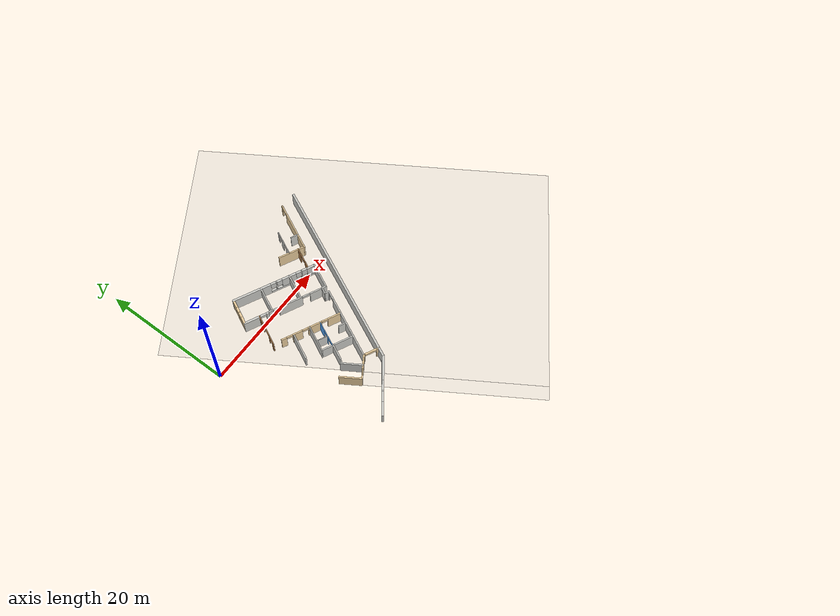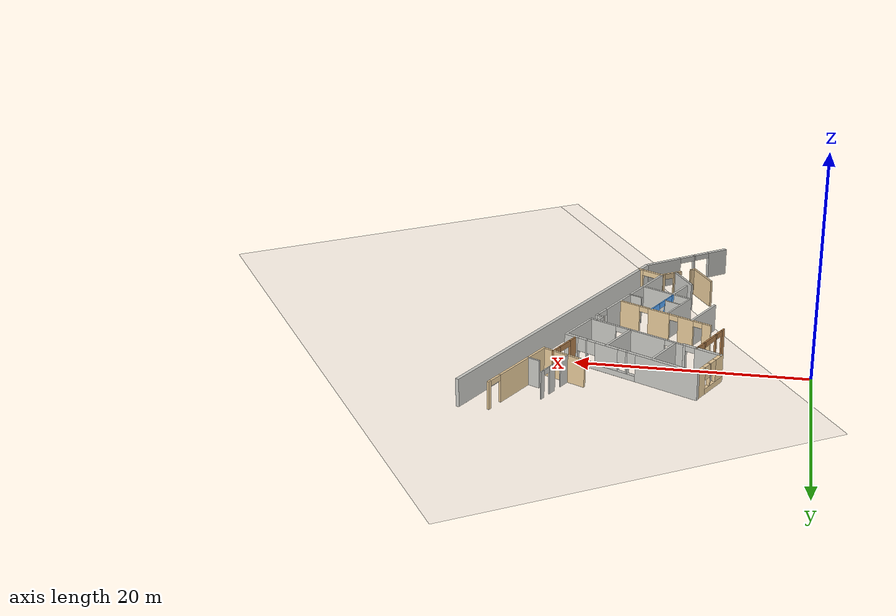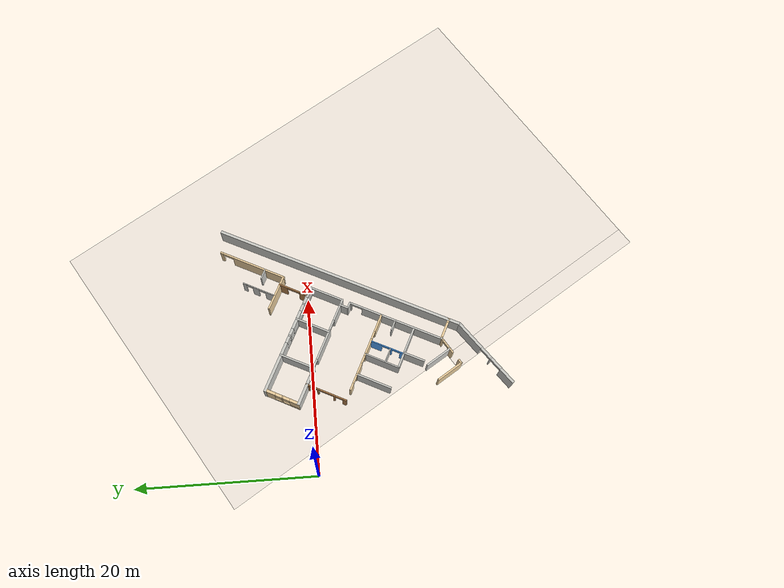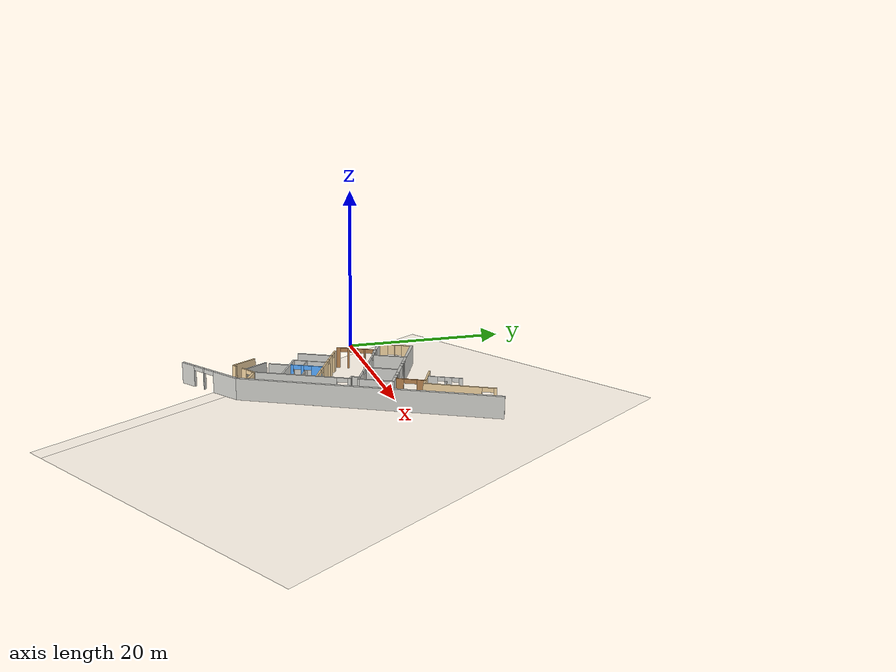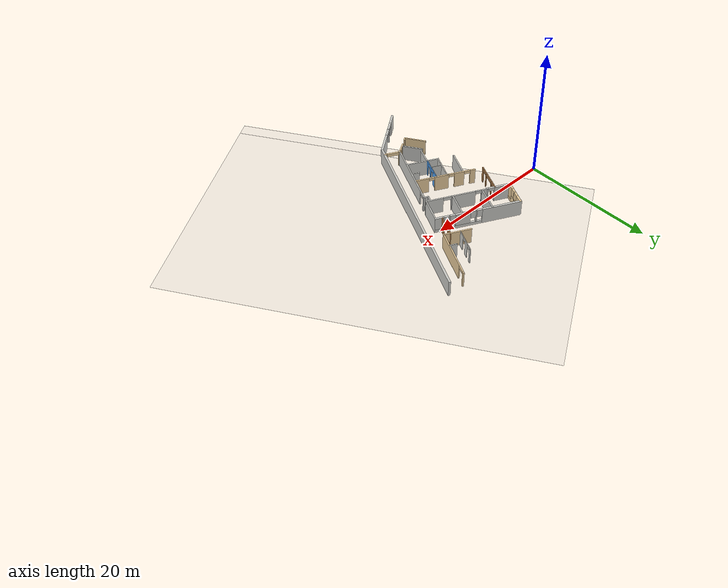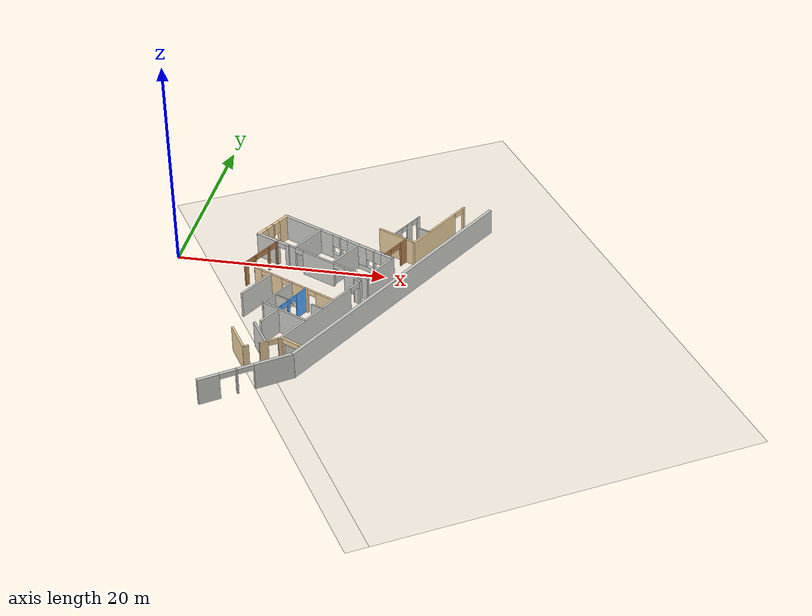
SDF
<sdf version="1.6">
 <model name="floor_with_ground">
  <pose>1.8499 0.23643 0 0 -0 0</pose>
  <link name="Wall_112">
   <pose>22.1541 5.91057 0 0 -0 1.10738</pose>
   <visual name="Wall_112_Visual_0">
    <pose>-0.807941 0 1.25 0 -0 0</pose>
    <geometry><box><size>6.40101 0.2 2.5</size></box></geometry>
    <material>
     <script><uri>file://media/materials/scripts/gazebo.material</uri><name>Gazebo/Grey</name></script>
     <ambient>0.921569 0.807843 0.615686 1</ambient>
    </material>
   </visual>
   <collision name="Wall_112_Collision_0">
    <geometry><box><size>6.40101 0.2 2.5</size></box></geometry>
    <pose>-0.807941 0 1.25 0 -0 0</pose>
   </collision>
   <visual name="Wall_112_Visual_1">
    <pose>3.83601 0 1.25 0 -0 0</pose>
    <geometry><box><size>0.344876 0.2 2.5</size></box></geometry>
    <material>
     <script><uri>file://media/materials/scripts/gazebo.material</uri><name>Gazebo/Grey</name></script>
     <ambient>0.921569 0.807843 0.615686 1</ambient>
    </material>
   </visual>
   <collision name="Wall_112_Collision_1">
    <geometry><box><size>0.344876 0.2 2.5</size></box></geometry>
    <pose>3.83601 0 1.25 0 -0 0</pose>
   </collision>
   <visual name="Wall_112_Visual_2">
    <pose>3.02807 0 2.25 0 -0 0</pose>
    <geometry><box><size>1.27101 0.2 0.5</size></box></geometry>
    <material>
     <script><uri>file://media/materials/scripts/gazebo.material</uri><name>Gazebo/Grey</name></script>
     <ambient>0.921569 0.807843 0.615686 1</ambient>
    </material>
   </visual>
   <collision name="Wall_112_Collision_2">
    <geometry><box><size>1.27101 0.2 0.5</size></box></geometry>
    <pose>3.02807 0 2.25 0 -0 0</pose>
   </collision>
  </link>
  <link name="Wall_12">
   <collision name="Wall_12_Collision">
    <geometry><box><size>4.1128 0.2 2.5</size></box></geometry>
    <pose>0 0 1.25 0 -0 0</pose>
   </collision>
   <visual name="Wall_12_Visual">
    <pose>0 0 1.25 0 -0 0</pose>
    <geometry><box><size>4.1128 0.2 2.5</size></box></geometry>
    <material>
     <script><uri>file://media/materials/scripts/gazebo.material</uri><name>Gazebo/CeilingTiled</name></script>
     <ambient>0.333333 0.666667 1 1</ambient>
    </material>
   </visual>
   <pose>14.4755 -0.590962 0 0 0 -2.03138</pose>
  </link>
  <link name="Wall_130">
   <collision name="Wall_130_Collision">
    <geometry><box><size>29.5051 0.32 2.5</size></box></geometry>
    <pose>0 0 1.25 0 -0 0</pose>
   </collision>
   <visual name="Wall_130_Visual">
    <pose>0 0 1.25 0 -0 0</pose>
    <geometry><box><size>29.5051 0.32 2.5</size></box></geometry>
    <material>
     <script><uri>file://media/materials/scripts/gazebo.material</uri><name>Gazebo/CeilingTiled</name></script>
     <ambient>0.921569 0.807843 0.615686 1</ambient>
    </material>
   </visual>
   <pose>19.9743 -3.85686 0 0 0 -2.02831</pose>
  </link>
  <link name="Wall_150">
   <pose>19.1341 5.27207 0 0 -0 1.10912</pose>
   <visual name="Wall_150_Visual_0">
    <pose>-1.39348 0 1.25 0 -0 0</pose>
    <geometry><box><size>1.16958 0.1 2.5</size></box></geometry>
    <material>
     <script><uri>file://media/materials/scripts/gazebo.material</uri><name>Gazebo/CeilingTiled</name></script>
     <ambient>0.333333 0.666667 1 1</ambient>
    </material>
   </visual>
   <collision name="Wall_150_Collision_0">
    <geometry><box><size>1.16958 0.1 2.5</size></box></geometry>
    <pose>-1.39348 0 1.25 0 -0 0</pose>
   </collision>
   <visual name="Wall_150_Visual_1">
    <pose>0.382725 0 1.25 0 -0 0</pose>
    <geometry><box><size>0.787005 0.1 2.5</size></box></geometry>
    <material>
     <script><uri>file://media/materials/scripts/gazebo.material</uri><name>Gazebo/CeilingTiled</name></script>
     <ambient>0.333333 0.666667 1 1</ambient>
    </material>
   </visual>
   <collision name="Wall_150_Collision_1">
    <geometry><box><size>0.787005 0.1 2.5</size></box></geometry>
    <pose>0.382725 0 1.25 0 -0 0</pose>
   </collision>
   <visual name="Wall_150_Visual_2">
    <pose>1.749 0 1.25 0 -0 0</pose>
    <geometry><box><size>0.458525 0.1 2.5</size></box></geometry>
    <material>
     <script><uri>file://media/materials/scripts/gazebo.material</uri><name>Gazebo/CeilingTiled</name></script>
     <ambient>0.333333 0.666667 1 1</ambient>
    </material>
   </visual>
   <collision name="Wall_150_Collision_2">
    <geometry><box><size>0.458525 0.1 2.5</size></box></geometry>
    <pose>1.749 0 1.25 0 -0 0</pose>
   </collision>
   <visual name="Wall_150_Visual_3">
    <pose>-0.409732 0 2.25 0 -0 0</pose>
    <geometry><box><size>0.79791 0.1 0.5</size></box></geometry>
    <material>
     <script><uri>file://media/materials/scripts/gazebo.material</uri><name>Gazebo/CeilingTiled</name></script>
     <ambient>0.333333 0.666667 1 1</ambient>
    </material>
   </visual>
   <collision name="Wall_150_Collision_3">
    <geometry><box><size>0.79791 0.1 0.5</size></box></geometry>
    <pose>-0.409732 0 2.25 0 -0 0</pose>
   </collision>
   <visual name="Wall_150_Visual_4">
    <pose>1.14798 0 2.25 0 -0 0</pose>
    <geometry><box><size>0.743511 0.1 0.5</size></box></geometry>
    <material>
     <script><uri>file://media/materials/scripts/gazebo.material</uri><name>Gazebo/CeilingTiled</name></script>
     <ambient>0.333333 0.666667 1 1</ambient>
    </material>
   </visual>
   <collision name="Wall_150_Collision_4">
    <geometry><box><size>0.743511 0.1 0.5</size></box></geometry>
    <pose>1.14798 0 2.25 0 -0 0</pose>
   </collision>
  </link>
  <link name="Wall_26">
   <collision name="Wall_26_Collision">
    <geometry><box><size>1.1044 0.2 2.5</size></box></geometry>
    <pose>0 0 1.25 0 -0 0</pose>
   </collision>
   <visual name="Wall_26_Visual">
    <pose>0 0 1.25 0 -0 0</pose>
    <geometry><box><size>1.1044 0.2 2.5</size></box></geometry>
    <material>
     <script><uri>file://media/materials/scripts/gazebo.material</uri><name>Gazebo/CeilingTiled</name></script>
     <ambient>0.921569 0.807843 0.615686 1</ambient>
    </material>
   </visual>
   <pose>16.4337 -4.25164 0 0 0 -2.02783</pose>
  </link>
  <link name="Wall_267">
   <collision name="Wall_267_Collision">
    <geometry><box><size>3.28805 0.2 2.5</size></box></geometry>
    <pose>0 0 1.25 0 -0 0</pose>
   </collision>
   <visual name="Wall_267_Visual">
    <pose>0 0 1.25 0 -0 0</pose>
    <geometry><box><size>3.28805 0.2 2.5</size></box></geometry>
    <material>
     <script><uri>file://media/materials/scripts/gazebo.material</uri><name>Gazebo/Grey</name></script>
     <ambient>0.921569 0.807843 0.615686 1</ambient>
    </material>
   </visual>
   <pose>8.1726 -15.4049 0 0 -0 2.12873432679</pose>
  </link>
  <link name="Wall_269">
   <collision name="Wall_269_Collision">
    <geometry><box><size>3.23877 0.2 2.5</size></box></geometry>
    <pose>0 0 1.25 0 -0 0</pose>
   </collision>
   <visual name="Wall_269_Visual">
    <pose>0 0 1.25 0 -0 0</pose>
    <geometry><box><size>3.23877 0.2 2.5</size></box></geometry>
    <material>
     <script><uri>file://media/materials/scripts/gazebo.material</uri><name>Gazebo/CeilingTiled</name></script>
     <ambient>0.921569 0.807843 0.615686 1</ambient>
    </material>
   </visual>
   <pose>9.86417 -14.3173 0 0 0 -1.0128583268</pose>
  </link>
  <link name="Wall_27">
   <collision name="Wall_27_Collision">
    <geometry><box><size>0.799416 0.2 2.5</size></box></geometry>
    <pose>0 0 1.25 0 -0 0</pose>
   </collision>
   <visual name="Wall_27_Visual">
    <pose>0 0 1.25 0 -0 0</pose>
    <geometry><box><size>0.799416 0.2 2.5</size></box></geometry>
    <material>
     <script><uri>file://media/materials/scripts/gazebo.material</uri><name>Gazebo/CeilingTiled</name></script>
     <ambient>0.921569 0.807843 0.615686 1</ambient>
    </material>
   </visual>
   <pose>16.4993 -4.79733 0 0 0 -0.485395</pose>
  </link>
  <link name="Wall_271">
   <pose>11.0941 -15.4007 0 0 -0 0.557938</pose>
   <visual name="Wall_271_Visual_0">
    <pose>-0.638415 0 1.25 0 -0 0</pose>
    <geometry><box><size>0.808393 0.2 2.5</size></box></geometry>
    <material>
     <script><uri>file://media/materials/scripts/gazebo.material</uri><name>Gazebo/Grey</name></script>
     <ambient>0.921569 0.807843 0.615686 1</ambient>
    </material>
   </visual>
   <collision name="Wall_271_Collision_0">
    <geometry><box><size>0.808393 0.2 2.5</size></box></geometry>
    <pose>-0.638415 0 1.25 0 -0 0</pose>
   </collision>
   <visual name="Wall_271_Visual_1">
    <pose>0.854197 0 1.25 0 -0 0</pose>
    <geometry><box><size>0.376831 0.2 2.5</size></box></geometry>
    <material>
     <script><uri>file://media/materials/scripts/gazebo.material</uri><name>Gazebo/Grey</name></script>
     <ambient>0.921569 0.807843 0.615686 1</ambient>
    </material>
   </visual>
   <collision name="Wall_271_Collision_1">
    <geometry><box><size>0.376831 0.2 2.5</size></box></geometry>
    <pose>0.854197 0 1.25 0 -0 0</pose>
   </collision>
   <visual name="Wall_271_Visual_2">
    <pose>0.215781 0 2.25 0 -0 0</pose>
    <geometry><box><size>0.9 0.2 0.5</size></box></geometry>
    <material>
     <script><uri>file://media/materials/scripts/gazebo.material</uri><name>Gazebo/Grey</name></script>
     <ambient>0.921569 0.807843 0.615686 1</ambient>
    </material>
   </visual>
   <collision name="Wall_271_Collision_2">
    <geometry><box><size>0.9 0.2 0.5</size></box></geometry>
    <pose>0.215781 0 2.25 0 -0 0</pose>
   </collision>
  </link>
  <link name="Wall_273">
   <collision name="Wall_273_Collision">
    <geometry><box><size>0.577636 0.2 2.5</size></box></geometry>
    <pose>0 0 1.25 0 -0 0</pose>
   </collision>
   <visual name="Wall_273_Visual">
    <pose>0 0 1.25 0 -0 0</pose>
    <geometry><box><size>0.577636 0.2 2.5</size></box></geometry>
    <material>
     <script><uri>file://media/materials/scripts/gazebo.material</uri><name>Gazebo/Grey</name></script>
     <ambient>0.921569 0.807843 0.615686 1</ambient>
    </material>
   </visual>
   <pose>9.1660 -16.6272 0 0 0 -2.58365465359</pose>
  </link>
  <link name="Wall_290">
   <collision name="Wall_290_Collision">
    <geometry><box><size>1.23874 0.15 2.5</size></box></geometry>
    <pose>0 0 1.25 0 -0 0</pose>
   </collision>
   <visual name="Wall_290_Visual">
    <pose>0 0 1.25 0 -0 0</pose>
    <geometry><box><size>1.23874 0.15 2.5</size></box></geometry>
    <material>
     <script><uri>file://media/materials/scripts/gazebo.material</uri><name>Gazebo/CeilingTiled</name></script>
     <ambient>0.333333 0.666667 1 1</ambient>
    </material>
   </visual>
   <pose>20.9669 4.70214 0 0 -0 2.70273</pose>
  </link>
  <link name="Wall_302">
   <collision name="Wall_302_Collision">
    <geometry><box><size>5.0033 0.2 2.5</size></box></geometry>
    <pose>0 0 1.25 0 -0 0</pose>
   </collision>
   <visual name="Wall_302_Visual">
    <pose>0 0 1.25 0 -0 0</pose>
    <geometry><box><size>5.0033 0.2 2.5</size></box></geometry>
    <material>
     <script><uri>file://media/materials/scripts/gazebo.material</uri><name>Gazebo/CeilingTiled</name></script>
     <ambient>0.921569 0.807843 0.615686 1</ambient>
    </material>
   </visual>
   <pose>11.2031 -10.8444 0 0 -0 2.68167</pose>
  </link>
  <link name="Wall_332">
   <pose>10.9816 -6.33693 0 0 0 -0.458374</pose>
   <visual name="Wall_332_Visual_0">
    <pose>-4.21903 0 1.25 0 -0 0</pose>
    <geometry><box><size>0.835689 0.2 2.5</size></box></geometry>
    <material>
     <script><uri>file://media/materials/scripts/gazebo.material</uri><name>Gazebo/Grey</name></script>
     <ambient>0.921569 0.807843 0.615686 1</ambient>
    </material>
   </visual>
   <collision name="Wall_332_Collision_0">
    <geometry><box><size>0.835689 0.2 2.5</size></box></geometry>
    <pose>-4.21903 0 1.25 0 -0 0</pose>
   </collision>
   <visual name="Wall_332_Visual_1">
    <pose>-2.14453 0 1.25 0 -0 0</pose>
    <geometry><box><size>1.51332 0.2 2.5</size></box></geometry>
    <material>
     <script><uri>file://media/materials/scripts/gazebo.material</uri><name>Gazebo/Grey</name></script>
     <ambient>0.921569 0.807843 0.615686 1</ambient>
    </material>
   </visual>
   <collision name="Wall_332_Collision_1">
    <geometry><box><size>1.51332 0.2 2.5</size></box></geometry>
    <pose>-2.14453 0 1.25 0 -0 0</pose>
   </collision>
   <visual name="Wall_332_Visual_2">
    <pose>0.57727 0 1.25 0 -0 0</pose>
    <geometry><box><size>2.13027 0.2 2.5</size></box></geometry>
    <material>
     <script><uri>file://media/materials/scripts/gazebo.material</uri><name>Gazebo/Grey</name></script>
     <ambient>0.921569 0.807843 0.615686 1</ambient>
    </material>
   </visual>
   <collision name="Wall_332_Collision_2">
    <geometry><box><size>2.13027 0.2 2.5</size></box></geometry>
    <pose>0.57727 0 1.25 0 -0 0</pose>
   </collision>
   <visual name="Wall_332_Visual_3">
    <pose>3.58964 0 1.25 0 -0 0</pose>
    <geometry><box><size>2.09447 0.2 2.5</size></box></geometry>
    <material>
     <script><uri>file://media/materials/scripts/gazebo.material</uri><name>Gazebo/Grey</name></script>
     <ambient>0.921569 0.807843 0.615686 1</ambient>
    </material>
   </visual>
   <collision name="Wall_332_Collision_3">
    <geometry><box><size>2.09447 0.2 2.5</size></box></geometry>
    <pose>3.58964 0 1.25 0 -0 0</pose>
   </collision>
   <visual name="Wall_332_Visual_4">
    <pose>-3.35119 0 2.25 0 -0 0</pose>
    <geometry><box><size>0.9 0.2 0.5</size></box></geometry>
    <material>
     <script><uri>file://media/materials/scripts/gazebo.material</uri><name>Gazebo/Grey</name></script>
     <ambient>0.921569 0.807843 0.615686 1</ambient>
    </material>
   </visual>
   <collision name="Wall_332_Collision_4">
    <geometry><box><size>0.9 0.2 0.5</size></box></geometry>
    <pose>-3.35119 0 2.25 0 -0 0</pose>
   </collision>
   <visual name="Wall_332_Visual_5">
    <pose>-0.937867 0 2.25 0 -0 0</pose>
    <geometry><box><size>0.9 0.2 0.5</size></box></geometry>
    <material>
     <script><uri>file://media/materials/scripts/gazebo.material</uri><name>Gazebo/Grey</name></script>
     <ambient>0.921569 0.807843 0.615686 1</ambient>
    </material>
   </visual>
   <collision name="Wall_332_Collision_5">
    <geometry><box><size>0.9 0.2 0.5</size></box></geometry>
    <pose>-0.937867 0 2.25 0 -0 0</pose>
   </collision>
   <visual name="Wall_332_Visual_6">
    <pose>2.09241 0 2.25 0 -0 0</pose>
    <geometry><box><size>0.9 0.2 0.5</size></box></geometry>
    <material>
     <script><uri>file://media/materials/scripts/gazebo.material</uri><name>Gazebo/Grey</name></script>
     <ambient>0.921569 0.807843 0.615686 1</ambient>
    </material>
   </visual>
   <collision name="Wall_332_Collision_6">
    <geometry><box><size>0.9 0.2 0.5</size></box></geometry>
    <pose>2.09241 0 2.25 0 -0 0</pose>
   </collision>
  </link>
  <link name="Wall_334">
   <pose>7.31311 0.655205 0 0 0 -0.453941</pose>
   <visual name="Wall_334_Visual_0">
    <pose>-0.64574 0 1.25 0 -0 0</pose>
    <geometry><box><size>2.55575 0.32 2.5</size></box></geometry>
    <material>
     <script><uri>file://media/materials/scripts/gazebo.material</uri><name>Gazebo/CeilingTiled</name></script>
     <ambient>0.921569 0.807843 0.615686 1</ambient>
    </material>
   </visual>
   <collision name="Wall_334_Collision_0">
    <geometry><box><size>2.55575 0.32 2.5</size></box></geometry>
    <pose>-0.64574 0 1.25 0 -0 0</pose>
   </collision>
   <visual name="Wall_334_Visual_1">
    <pose>1.72788 0 1.25 0 -0 0</pose>
    <geometry><box><size>0.39148 0.32 2.5</size></box></geometry>
    <material>
     <script><uri>file://media/materials/scripts/gazebo.material</uri><name>Gazebo/CeilingTiled</name></script>
     <ambient>0.921569 0.807843 0.615686 1</ambient>
    </material>
   </visual>
   <collision name="Wall_334_Collision_1">
    <geometry><box><size>0.39148 0.32 2.5</size></box></geometry>
    <pose>1.72788 0 1.25 0 -0 0</pose>
   </collision>
   <visual name="Wall_334_Visual_2">
    <pose>1.08214 0 2.25 0 -0 0</pose>
    <geometry><box><size>0.9 0.32 0.5</size></box></geometry>
    <material>
     <script><uri>file://media/materials/scripts/gazebo.material</uri><name>Gazebo/CeilingTiled</name></script>
     <ambient>0.921569 0.807843 0.615686 1</ambient>
    </material>
   </visual>
   <collision name="Wall_334_Collision_2">
    <geometry><box><size>0.9 0.32 0.5</size></box></geometry>
    <pose>1.08214 0 2.25 0 -0 0</pose>
   </collision>
  </link>
  <link name="Wall_336">
   <pose>13.0975 -2.1013 0 0 0 -0.455281</pose>
   <visual name="Wall_336_Visual_0">
    <pose>-4.21364 0 1.25 0 -0 0</pose>
    <geometry><box><size>0.897401 0.2 2.5</size></box></geometry>
    <material>
     <script><uri>file://media/materials/scripts/gazebo.material</uri><name>Gazebo/CeilingTiled</name></script>
     <ambient>0.921569 0.807843 0.615686 1</ambient>
    </material>
   </visual>
   <collision name="Wall_336_Collision_0">
    <geometry><box><size>0.897401 0.2 2.5</size></box></geometry>
    <pose>-4.21364 0 1.25 0 -0 0</pose>
   </collision>
   <visual name="Wall_336_Visual_1">
    <pose>-1.02963 0 1.25 0 -0 0</pose>
    <geometry><box><size>3.67063 0.2 2.5</size></box></geometry>
    <material>
     <script><uri>file://media/materials/scripts/gazebo.material</uri><name>Gazebo/CeilingTiled</name></script>
     <ambient>0.921569 0.807843 0.615686 1</ambient>
    </material>
   </visual>
   <collision name="Wall_336_Collision_1">
    <geometry><box><size>3.67063 0.2 2.5</size></box></geometry>
    <pose>-1.02963 0 1.25 0 -0 0</pose>
   </collision>
   <visual name="Wall_336_Visual_2">
    <pose>3.33821 0 1.25 0 -0 0</pose>
    <geometry><box><size>2.64825 0.2 2.5</size></box></geometry>
    <material>
     <script><uri>file://media/materials/scripts/gazebo.material</uri><name>Gazebo/CeilingTiled</name></script>
     <ambient>0.921569 0.807843 0.615686 1</ambient>
    </material>
   </visual>
   <collision name="Wall_336_Collision_2">
    <geometry><box><size>2.64825 0.2 2.5</size></box></geometry>
    <pose>3.33821 0 1.25 0 -0 0</pose>
   </collision>
   <visual name="Wall_336_Visual_3">
    <pose>-3.31494 0 2.25 0 -0 0</pose>
    <geometry><box><size>0.9 0.2 0.5</size></box></geometry>
    <material>
     <script><uri>file://media/materials/scripts/gazebo.material</uri><name>Gazebo/CeilingTiled</name></script>
     <ambient>0.921569 0.807843 0.615686 1</ambient>
    </material>
   </visual>
   <collision name="Wall_336_Collision_3">
    <geometry><box><size>0.9 0.2 0.5</size></box></geometry>
    <pose>-3.31494 0 2.25 0 -0 0</pose>
   </collision>
   <visual name="Wall_336_Visual_4">
    <pose>1.40989 0 2.25 0 -0 0</pose>
    <geometry><box><size>1.2084 0.2 0.5</size></box></geometry>
    <material>
     <script><uri>file://media/materials/scripts/gazebo.material</uri><name>Gazebo/CeilingTiled</name></script>
     <ambient>0.921569 0.807843 0.615686 1</ambient>
    </material>
   </visual>
   <collision name="Wall_336_Collision_4">
    <geometry><box><size>1.2084 0.2 0.5</size></box></geometry>
    <pose>1.40989 0 2.25 0 -0 0</pose>
   </collision>
  </link>
  <link name="Wall_341">
   <collision name="Wall_341_Collision">
    <geometry><box><size>4.17213 0.2 2.5</size></box></geometry>
    <pose>0 0 1.25 0 -0 0</pose>
   </collision>
   <visual name="Wall_341_Visual">
    <pose>0 0 1.25 0 -0 0</pose>
    <geometry><box><size>4.17213 0.2 2.5</size></box></geometry>
    <material>
     <script><uri>file://media/materials/scripts/gazebo.material</uri><name>Gazebo/Grey</name></script>
     <ambient>0.921569 0.807843 0.615686 1</ambient>
    </material>
   </visual>
   <pose>18.6106 3.31657 0 0 0 -0.460157</pose>
  </link>
  <link name="Wall_364">
   <collision name="Wall_364_Collision">
    <geometry><box><size>4.10297 0.2 2.5</size></box></geometry>
    <pose>0 0 1.25 0 -0 0</pose>
   </collision>
   <visual name="Wall_364_Visual">
    <pose>0 0 1.25 0 -0 0</pose>
    <geometry><box><size>4.10297 0.2 2.5</size></box></geometry>
    <material>
     <script><uri>file://media/materials/scripts/gazebo.material</uri><name>Gazebo/CeilingTiled</name></script>
     <ambient>0.921569 0.807843 0.615686 1</ambient>
    </material>
   </visual>
   <pose>18.0652 -2.35064 0 0 -0 1.10983</pose>
  </link>
  <link name="Wall_380">
   <collision name="Wall_380_Collision">
    <geometry><box><size>2.50657 0.2 2.5</size></box></geometry>
    <pose>0 0 1.25 0 -0 0</pose>
   </collision>
   <visual name="Wall_380_Visual">
    <pose>0 0 1.25 0 -0 0</pose>
    <geometry><box><size>2.50657 0.2 2.5</size></box></geometry>
    <material>
     <script><uri>file://media/materials/scripts/gazebo.material</uri><name>Gazebo/CeilingTiled</name></script>
     <ambient>0.921569 0.807843 0.615686 1</ambient>
    </material>
   </visual>
   <pose>10.0523 -11.6024 0 0 0 -2.02773</pose>
  </link>
  <link name="Wall_386">
   <pose>9.95143 -19.6035 0 0 -0 0.628193</pose>
   <visual name="Wall_386_Visual_0">
    <pose>-3.38858 0 1.25 0 -0 0</pose>
    <geometry><box><size>2.005 0.32 2.5</size></box></geometry>
    <material>
     <script><uri>file://media/materials/scripts/gazebo.material</uri><name>Gazebo/CeilingTiled</name></script>
     <ambient>0.921569 0.807843 0.615686 1</ambient>
    </material>
   </visual>
   <collision name="Wall_386_Collision_0">
    <geometry><box><size>2.005 0.32 2.5</size></box></geometry>
    <pose>-3.38858 0 1.25 0 -0 0</pose>
   </collision>
   <visual name="Wall_386_Visual_1">
    <pose>-0.816378 0 1.25 0 -0 0</pose>
    <geometry><box><size>0.139412 0.32 2.5</size></box></geometry>
    <material>
     <script><uri>file://media/materials/scripts/gazebo.material</uri><name>Gazebo/CeilingTiled</name></script>
     <ambient>0.921569 0.807843 0.615686 1</ambient>
    </material>
   </visual>
   <collision name="Wall_386_Collision_1">
    <geometry><box><size>0.139412 0.32 2.5</size></box></geometry>
    <pose>-0.816378 0 1.25 0 -0 0</pose>
   </collision>
   <visual name="Wall_386_Visual_2">
    <pose>2.57221 0 1.25 0 -0 0</pose>
    <geometry><box><size>3.63776 0.32 2.5</size></box></geometry>
    <material>
     <script><uri>file://media/materials/scripts/gazebo.material</uri><name>Gazebo/CeilingTiled</name></script>
     <ambient>0.921569 0.807843 0.615686 1</ambient>
    </material>
   </visual>
   <collision name="Wall_386_Collision_2">
    <geometry><box><size>3.63776 0.32 2.5</size></box></geometry>
    <pose>2.57221 0 1.25 0 -0 0</pose>
   </collision>
   <visual name="Wall_386_Visual_3">
    <pose>-1.63608 0 2.25 0 -0 0</pose>
    <geometry><box><size>1.5 0.32 0.5</size></box></geometry>
    <material>
     <script><uri>file://media/materials/scripts/gazebo.material</uri><name>Gazebo/CeilingTiled</name></script>
     <ambient>0.921569 0.807843 0.615686 1</ambient>
    </material>
   </visual>
   <collision name="Wall_386_Collision_3">
    <geometry><box><size>1.5 0.32 0.5</size></box></geometry>
    <pose>-1.63608 0 2.25 0 -0 0</pose>
   </collision>
   <visual name="Wall_386_Visual_4">
    <pose>0.003328 0 2.25 0 -0 0</pose>
    <geometry><box><size>1.5 0.32 0.5</size></box></geometry>
    <material>
     <script><uri>file://media/materials/scripts/gazebo.material</uri><name>Gazebo/CeilingTiled</name></script>
     <ambient>0.921569 0.807843 0.615686 1</ambient>
    </material>
   </visual>
   <collision name="Wall_386_Collision_4">
    <geometry><box><size>1.5 0.32 0.5</size></box></geometry>
    <pose>0.003328 0 2.25 0 -0 0</pose>
   </collision>
  </link>
  <link name="Wall_39">
   <collision name="Wall_39_Collision">
    <geometry><box><size>1.25022 0.15 2.5</size></box></geometry>
    <pose>0 0 1.25 0 -0 0</pose>
   </collision>
   <visual name="Wall_39_Visual">
    <pose>0 0 1.25 0 -0 0</pose>
    <geometry><box><size>1.25022 0.15 2.5</size></box></geometry>
    <material>
     <script><uri>file://media/materials/scripts/gazebo.material</uri><name>Gazebo/CeilingTiled</name></script>
     <ambient>0.333333 0.666667 1 1</ambient>
    </material>
   </visual>
   <pose>13.8575 -9.62776 0 0 -0 2.69407</pose>
  </link>
  <link name="Wall_44">
   <collision name="Wall_44_Collision">
    <geometry><box><size>4.15523 0.15 2.5</size></box></geometry>
    <pose>0 0 1.25 0 -0 0</pose>
   </collision>
   <visual name="Wall_44_Visual">
    <pose>0 0 1.25 0 -0 0</pose>
    <geometry><box><size>4.15523 0.15 2.5</size></box></geometry>
    <material>
     <script><uri>file://media/materials/scripts/gazebo.material</uri><name>Gazebo/CeilingTiled</name></script>
     <ambient>0.333333 0.666667 1 1</ambient>
    </material>
   </visual>
   <pose>9.87577 -8.00783 0 0 -0 1.10819</pose>
  </link>
  <link name="Wall_5">
   <pose>13.1629 2.18986 0 0 0 -0.459535</pose>
   <visual name="Wall_5_Visual_0">
    <pose>-3.53371 0 1.25 0 -0 0</pose>
    <geometry><box><size>5.94935 0.32 2.5</size></box></geometry>
    <material>
     <script><uri>file://media/materials/scripts/gazebo.material</uri><name>Gazebo/CeilingTiled</name></script>
     <ambient>0.921569 0.807843 0.615686 1</ambient>
    </material>
   </visual>
   <collision name="Wall_5_Collision_0">
    <geometry><box><size>5.94935 0.32 2.5</size></box></geometry>
    <pose>-3.53371 0 1.25 0 -0 0</pose>
   </collision>
   <visual name="Wall_5_Visual_1">
    <pose>2.97468 0 0.25 0 -0 0</pose>
    <geometry><box><size>7.06743 0.32 0.5</size></box></geometry>
    <material>
     <script><uri>file://media/materials/scripts/gazebo.material</uri><name>Gazebo/CeilingTiled</name></script>
     <ambient>0.921569 0.807843 0.615686 1</ambient>
    </material>
   </visual>
   <collision name="Wall_5_Collision_1">
    <geometry><box><size>7.06743 0.32 0.5</size></box></geometry>
    <pose>2.97468 0 0.25 0 -0 0</pose>
   </collision>
   <visual name="Wall_5_Visual_2">
    <pose>0.320411 0 1.5 0 -0 0</pose>
    <geometry><box><size>0.158894 0.32 2</size></box></geometry>
    <material>
     <script><uri>file://media/materials/scripts/gazebo.material</uri><name>Gazebo/CeilingTiled</name></script>
     <ambient>0.921569 0.807843 0.615686 1</ambient>
    </material>
   </visual>
   <collision name="Wall_5_Collision_2">
    <geometry><box><size>0.158894 0.32 2</size></box></geometry>
    <pose>0.320411 0 1.5 0 -0 0</pose>
   </collision>
   <visual name="Wall_5_Visual_3">
    <pose>2.32097 0 1.5 0 -0 0</pose>
    <geometry><box><size>2.24223 0.32 2</size></box></geometry>
    <material>
     <script><uri>file://media/materials/scripts/gazebo.material</uri><name>Gazebo/CeilingTiled</name></script>
     <ambient>0.921569 0.807843 0.615686 1</ambient>
    </material>
   </visual>
   <collision name="Wall_5_Collision_3">
    <geometry><box><size>2.24223 0.32 2</size></box></geometry>
    <pose>2.32097 0 1.5 0 -0 0</pose>
   </collision>
   <visual name="Wall_5_Visual_4">
    <pose>4.30792 0 1.5 0 -0 0</pose>
    <geometry><box><size>0.131654 0.32 2</size></box></geometry>
    <material>
     <script><uri>file://media/materials/scripts/gazebo.material</uri><name>Gazebo/CeilingTiled</name></script>
     <ambient>0.921569 0.807843 0.615686 1</ambient>
    </material>
   </visual>
   <collision name="Wall_5_Collision_4">
    <geometry><box><size>0.131654 0.32 2</size></box></geometry>
    <pose>4.30792 0 1.5 0 -0 0</pose>
   </collision>
   <visual name="Wall_5_Visual_5">
    <pose>5.84107 0 1.5 0 -0 0</pose>
    <geometry><box><size>1.33464 0.32 2</size></box></geometry>
    <material>
     <script><uri>file://media/materials/scripts/gazebo.material</uri><name>Gazebo/CeilingTiled</name></script>
     <ambient>0.921569 0.807843 0.615686 1</ambient>
    </material>
   </visual>
   <collision name="Wall_5_Collision_5">
    <geometry><box><size>1.33464 0.32 2</size></box></geometry>
    <pose>5.84107 0 1.5 0 -0 0</pose>
   </collision>
   <visual name="Wall_5_Visual_6">
    <pose>-0.159036 0 1.9 0 -0 0</pose>
    <geometry><box><size>0.8 0.32 1.2</size></box></geometry>
    <material>
     <script><uri>file://media/materials/scripts/gazebo.material</uri><name>Gazebo/CeilingTiled</name></script>
     <ambient>0.921569 0.807843 0.615686 1</ambient>
    </material>
   </visual>
   <collision name="Wall_5_Collision_6">
    <geometry><box><size>0.8 0.32 1.2</size></box></geometry>
    <pose>-0.159036 0 1.9 0 -0 0</pose>
   </collision>
   <visual name="Wall_5_Visual_7">
    <pose>0.799858 0 1.9 0 -0 0</pose>
    <geometry><box><size>0.8 0.32 1.2</size></box></geometry>
    <material>
     <script><uri>file://media/materials/scripts/gazebo.material</uri><name>Gazebo/CeilingTiled</name></script>
     <ambient>0.921569 0.807843 0.615686 1</ambient>
    </material>
   </visual>
   <collision name="Wall_5_Collision_7">
    <geometry><box><size>0.8 0.32 1.2</size></box></geometry>
    <pose>0.799858 0 1.9 0 -0 0</pose>
   </collision>
   <visual name="Wall_5_Visual_8">
    <pose>3.84209 0 1.9 0 -0 0</pose>
    <geometry><box><size>0.8 0.32 1.2</size></box></geometry>
    <material>
     <script><uri>file://media/materials/scripts/gazebo.material</uri><name>Gazebo/CeilingTiled</name></script>
     <ambient>0.921569 0.807843 0.615686 1</ambient>
    </material>
   </visual>
   <collision name="Wall_5_Collision_8">
    <geometry><box><size>0.8 0.32 1.2</size></box></geometry>
    <pose>3.84209 0 1.9 0 -0 0</pose>
   </collision>
   <visual name="Wall_5_Visual_9">
    <pose>4.77375 0 1.9 0 -0 0</pose>
    <geometry><box><size>0.8 0.32 1.2</size></box></geometry>
    <material>
     <script><uri>file://media/materials/scripts/gazebo.material</uri><name>Gazebo/CeilingTiled</name></script>
     <ambient>0.921569 0.807843 0.615686 1</ambient>
    </material>
   </visual>
   <collision name="Wall_5_Collision_9">
    <geometry><box><size>0.8 0.32 1.2</size></box></geometry>
    <pose>4.77375 0 1.9 0 -0 0</pose>
   </collision>
  </link>
  <link name="Wall_57">
   <collision name="Wall_57_Collision">
    <geometry><box><size>4.11412 0.2 2.5</size></box></geometry>
    <pose>0 0 1.25 0 -0 0</pose>
   </collision>
   <visual name="Wall_57_Visual">
    <pose>0 0 1.25 0 -0 0</pose>
    <geometry><box><size>4.11412 0.2 2.5</size></box></geometry>
    <material>
     <script><uri>file://media/materials/scripts/gazebo.material</uri><name>Gazebo/CeilingTiled</name></script>
     <ambient>0.333333 0.666667 1 1</ambient>
    </material>
   </visual>
   <pose>7.6526 -6.931 0 0 -0 1.10712</pose>
  </link>
  <link name="Wall_70">
   <pose>14.3578 -9.89619 0 0 0 -2.02975</pose>
   <visual name="Wall_70_Visual_0">
    <pose>-5.44816 0 1.25 0 -0 0</pose>
    <geometry><box><size>0.353116 0.2 2.5</size></box></geometry>
    <material>
     <script><uri>file://media/materials/scripts/gazebo.material</uri><name>Gazebo/CeilingTiled</name></script>
     <ambient>0.921569 0.807843 0.615686 1</ambient>
    </material>
   </visual>
   <collision name="Wall_70_Collision_0">
    <geometry><box><size>0.353116 0.2 2.5</size></box></geometry>
    <pose>-5.44816 0 1.25 0 -0 0</pose>
   </collision>
   <visual name="Wall_70_Visual_1">
    <pose>0.800409 0 1.25 0 -0 0</pose>
    <geometry><box><size>9.64861 0.2 2.5</size></box></geometry>
    <material>
     <script><uri>file://media/materials/scripts/gazebo.material</uri><name>Gazebo/CeilingTiled</name></script>
     <ambient>0.921569 0.807843 0.615686 1</ambient>
    </material>
   </visual>
   <collision name="Wall_70_Collision_1">
    <geometry><box><size>9.64861 0.2 2.5</size></box></geometry>
    <pose>0.800409 0 1.25 0 -0 0</pose>
   </collision>
   <visual name="Wall_70_Visual_2">
    <pose>-4.64775 0 2.25 0 -0 0</pose>
    <geometry><box><size>1.2477 0.2 0.5</size></box></geometry>
    <material>
     <script><uri>file://media/materials/scripts/gazebo.material</uri><name>Gazebo/CeilingTiled</name></script>
     <ambient>0.921569 0.807843 0.615686 1</ambient>
    </material>
   </visual>
   <collision name="Wall_70_Collision_2">
    <geometry><box><size>1.2477 0.2 0.5</size></box></geometry>
    <pose>-4.64775 0 2.25 0 -0 0</pose>
   </collision>
  </link>
  <link name="Wall_73">
   <pose>6.764 -1.6362 0 0 -0 1.11548</pose>
   <visual name="Wall_73_Visual_0">
    <pose>-2.19583 0 1.25 0 -0 0</pose>
    <geometry><box><size>0.451571 0.15 2.5</size></box></geometry>
    <material>
     <script><uri>file://media/materials/scripts/gazebo.material</uri><name>Gazebo/Wood</name></script>
     <ambient>1 1 1 1</ambient>
    </material>
   </visual>
   <collision name="Wall_73_Collision_0">
    <geometry><box><size>0.451571 0.15 2.5</size></box></geometry>
    <pose>-2.19583 0 1.25 0 -0 0</pose>
   </collision>
   <visual name="Wall_73_Visual_1">
    <pose>-0.9682 0 1.25 0 -0 0</pose>
    <geometry><box><size>0.203699 0.15 2.5</size></box></geometry>
    <material>
     <script><uri>file://media/materials/scripts/gazebo.material</uri><name>Gazebo/Wood</name></script>
     <ambient>1 1 1 1</ambient>
    </material>
   </visual>
   <collision name="Wall_73_Collision_1">
    <geometry><box><size>0.203699 0.15 2.5</size></box></geometry>
    <pose>-0.9682 0 1.25 0 -0 0</pose>
   </collision>
   <visual name="Wall_73_Visual_2">
    <pose>0.963619 0 1.25 0 -0 0</pose>
    <geometry><box><size>0.201384 0.15 2.5</size></box></geometry>
    <material>
     <script><uri>file://media/materials/scripts/gazebo.material</uri><name>Gazebo/Wood</name></script>
     <ambient>1 1 1 1</ambient>
    </material>
   </visual>
   <collision name="Wall_73_Collision_2">
    <geometry><box><size>0.201384 0.15 2.5</size></box></geometry>
    <pose>0.963619 0 1.25 0 -0 0</pose>
   </collision>
   <visual name="Wall_73_Visual_3">
    <pose>2.19297 0 1.25 0 -0 0</pose>
    <geometry><box><size>0.457309 0.15 2.5</size></box></geometry>
    <material>
     <script><uri>file://media/materials/scripts/gazebo.material</uri><name>Gazebo/Wood</name></script>
     <ambient>1 1 1 1</ambient>
    </material>
   </visual>
   <collision name="Wall_73_Collision_3">
    <geometry><box><size>0.457309 0.15 2.5</size></box></geometry>
    <pose>2.19297 0 1.25 0 -0 0</pose>
   </collision>
   <visual name="Wall_73_Visual_4">
    <pose>-1.52005 0 2.25 0 -0 0</pose>
    <geometry><box><size>0.9 0.15 0.5</size></box></geometry>
    <material>
     <script><uri>file://media/materials/scripts/gazebo.material</uri><name>Gazebo/Wood</name></script>
     <ambient>1 1 1 1</ambient>
    </material>
   </visual>
   <collision name="Wall_73_Collision_4">
    <geometry><box><size>0.9 0.15 0.5</size></box></geometry>
    <pose>-1.52005 0 2.25 0 -0 0</pose>
   </collision>
   <visual name="Wall_73_Visual_5">
    <pose>-0.001712 0 2.25 0 -0 0</pose>
    <geometry><box><size>1.72928 0.15 0.5</size></box></geometry>
    <material>
     <script><uri>file://media/materials/scripts/gazebo.material</uri><name>Gazebo/Wood</name></script>
     <ambient>1 1 1 1</ambient>
    </material>
   </visual>
   <collision name="Wall_73_Collision_5">
    <geometry><box><size>1.72928 0.15 0.5</size></box></geometry>
    <pose>-0.001712 0 2.25 0 -0 0</pose>
   </collision>
   <visual name="Wall_73_Visual_6">
    <pose>1.51431 0 2.25 0 -0 0</pose>
    <geometry><box><size>0.9 0.15 0.5</size></box></geometry>
    <material>
     <script><uri>file://media/materials/scripts/gazebo.material</uri><name>Gazebo/Wood</name></script>
     <ambient>1 1 1 1</ambient>
    </material>
   </visual>
   <collision name="Wall_73_Collision_6">
    <geometry><box><size>0.9 0.15 0.5</size></box></geometry>
    <pose>1.51431 0 2.25 0 -0 0</pose>
   </collision>
  </link>
  <link name="Wall_78">
   <pose>6.60798 3.20703 0 0 0 -2.03369</pose>
   <visual name="Wall_78_Visual_0">
    <pose>-1.47199 0 1.25 0 -0 0</pose>
    <geometry><box><size>1.31795 0.32 2.5</size></box></geometry>
    <material>
     <script><uri>file://media/materials/scripts/gazebo.material</uri><name>Gazebo/Grey</name></script>
     <ambient>0.921569 0.807843 0.615686 1</ambient>
    </material>
   </visual>
   <collision name="Wall_78_Collision_0">
    <geometry><box><size>1.31795 0.32 2.5</size></box></geometry>
    <pose>-1.47199 0 1.25 0 -0 0</pose>
   </collision>
   <visual name="Wall_78_Visual_1">
    <pose>0.658976 0 0.25 0 -0 0</pose>
    <geometry><box><size>2.94397 0.32 0.5</size></box></geometry>
    <material>
     <script><uri>file://media/materials/scripts/gazebo.material</uri><name>Gazebo/Grey</name></script>
     <ambient>0.921569 0.807843 0.615686 1</ambient>
    </material>
   </visual>
   <collision name="Wall_78_Collision_1">
    <geometry><box><size>2.94397 0.32 0.5</size></box></geometry>
    <pose>0.658976 0 0.25 0 -0 0</pose>
   </collision>
   <visual name="Wall_78_Visual_2">
    <pose>0.04236 0 1.5 0 -0 0</pose>
    <geometry><box><size>0.110743 0.32 2</size></box></geometry>
    <material>
     <script><uri>file://media/materials/scripts/gazebo.material</uri><name>Gazebo/Grey</name></script>
     <ambient>0.921569 0.807843 0.615686 1</ambient>
    </material>
   </visual>
   <collision name="Wall_78_Collision_2">
    <geometry><box><size>0.110743 0.32 2</size></box></geometry>
    <pose>0.04236 0 1.5 0 -0 0</pose>
   </collision>
   <visual name="Wall_78_Visual_3">
    <pose>1.51435 0 1.5 0 -0 0</pose>
    <geometry><box><size>1.23323 0.32 2</size></box></geometry>
    <material>
     <script><uri>file://media/materials/scripts/gazebo.material</uri><name>Gazebo/Grey</name></script>
     <ambient>0.921569 0.807843 0.615686 1</ambient>
    </material>
   </visual>
   <collision name="Wall_78_Collision_3">
    <geometry><box><size>1.23323 0.32 2</size></box></geometry>
    <pose>1.51435 0 1.5 0 -0 0</pose>
   </collision>
   <visual name="Wall_78_Visual_4">
    <pose>-0.413011 0 1.9 0 -0 0</pose>
    <geometry><box><size>0.8 0.32 1.2</size></box></geometry>
    <material>
     <script><uri>file://media/materials/scripts/gazebo.material</uri><name>Gazebo/Grey</name></script>
     <ambient>0.921569 0.807843 0.615686 1</ambient>
    </material>
   </visual>
   <collision name="Wall_78_Collision_4">
    <geometry><box><size>0.8 0.32 1.2</size></box></geometry>
    <pose>-0.413011 0 1.9 0 -0 0</pose>
   </collision>
   <visual name="Wall_78_Visual_5">
    <pose>0.497732 0 1.9 0 -0 0</pose>
    <geometry><box><size>0.8 0.32 1.2</size></box></geometry>
    <material>
     <script><uri>file://media/materials/scripts/gazebo.material</uri><name>Gazebo/Grey</name></script>
     <ambient>0.921569 0.807843 0.615686 1</ambient>
    </material>
   </visual>
   <collision name="Wall_78_Collision_5">
    <geometry><box><size>0.8 0.32 1.2</size></box></geometry>
    <pose>0.497732 0 1.9 0 -0 0</pose>
   </collision>
  </link>
  <link name="Wall_85">
   <pose>12.9991 -15.3739 0 0 0 -0.46667</pose>
   <visual name="Wall_85_Visual_0">
    <pose>-1.1396 0 1.25 0 -0 0</pose>
    <geometry><box><size>0.337876 0.25 2.5</size></box></geometry>
    <material>
     <script><uri>file://media/materials/scripts/gazebo.material</uri><name>Gazebo/Grey</name></script>
     <ambient>0.921569 0.807843 0.615686 1</ambient>
    </material>
   </visual>
   <collision name="Wall_85_Collision_0">
    <geometry><box><size>0.337876 0.25 2.5</size></box></geometry>
    <pose>-1.1396 0 1.25 0 -0 0</pose>
   </collision>
   <visual name="Wall_85_Visual_1">
    <pose>1.04958 0 1.25 0 -0 0</pose>
    <geometry><box><size>0.517913 0.25 2.5</size></box></geometry>
    <material>
     <script><uri>file://media/materials/scripts/gazebo.material</uri><name>Gazebo/Grey</name></script>
     <ambient>0.921569 0.807843 0.615686 1</ambient>
    </material>
   </visual>
   <collision name="Wall_85_Collision_1">
    <geometry><box><size>0.517913 0.25 2.5</size></box></geometry>
    <pose>1.04958 0 1.25 0 -0 0</pose>
   </collision>
   <visual name="Wall_85_Visual_2">
    <pose>-0.090018 0 2.25 0 -0 0</pose>
    <geometry><box><size>1.76128 0.25 0.5</size></box></geometry>
    <material>
     <script><uri>file://media/materials/scripts/gazebo.material</uri><name>Gazebo/Grey</name></script>
     <ambient>0.921569 0.807843 0.615686 1</ambient>
    </material>
   </visual>
   <collision name="Wall_85_Collision_2">
    <geometry><box><size>1.76128 0.25 0.5</size></box></geometry>
    <pose>-0.090018 0 2.25 0 -0 0</pose>
   </collision>
  </link>
  <link name="Wall_87">
   <pose>18.8108 1.37909 0 0 -0 1.10918</pose>
   <visual name="Wall_87_Visual_0">
    <pose>-1.25611 0 1.25 0 -0 0</pose>
    <geometry><box><size>0.984161 0.15 2.5</size></box></geometry>
    <material>
     <script><uri>file://media/materials/scripts/gazebo.material</uri><name>Gazebo/Wood</name></script>
     <ambient>1 1 1 1</ambient>
    </material>
   </visual>
   <collision name="Wall_87_Collision_0">
    <geometry><box><size>0.984161 0.15 2.5</size></box></geometry>
    <pose>-1.25611 0 1.25 0 -0 0</pose>
   </collision>
   <visual name="Wall_87_Visual_1">
    <pose>1.22507 0 1.25 0 -0 0</pose>
    <geometry><box><size>1.04623 0.15 2.5</size></box></geometry>
    <material>
     <script><uri>file://media/materials/scripts/gazebo.material</uri><name>Gazebo/Wood</name></script>
     <ambient>1 1 1 1</ambient>
    </material>
   </visual>
   <collision name="Wall_87_Collision_1">
    <geometry><box><size>1.04623 0.15 2.5</size></box></geometry>
    <pose>1.22507 0 1.25 0 -0 0</pose>
   </collision>
   <visual name="Wall_87_Visual_2">
    <pose>-0.031035 0 2.25 0 -0 0</pose>
    <geometry><box><size>1.46598 0.15 0.5</size></box></geometry>
    <material>
     <script><uri>file://media/materials/scripts/gazebo.material</uri><name>Gazebo/Wood</name></script>
     <ambient>1 1 1 1</ambient>
    </material>
   </visual>
   <collision name="Wall_87_Collision_2">
    <geometry><box><size>1.46598 0.15 0.5</size></box></geometry>
    <pose>-0.031035 0 2.25 0 -0 0</pose>
   </collision>
  </link>
  <link name="Wall_89">
   <collision name="Wall_89_Collision">
    <geometry><box><size>4.07895 0.2 2.5</size></box></geometry>
    <pose>0 0 1.25 0 -0 0</pose>
   </collision>
   <visual name="Wall_89_Visual">
    <pose>0 0 1.25 0 -0 0</pose>
    <geometry><box><size>4.07895 0.2 2.5</size></box></geometry>
    <material>
     <script><uri>file://media/materials/scripts/gazebo.material</uri><name>Gazebo/CeilingTiled</name></script>
     <ambient>0.333333 0.666667 1 1</ambient>
    </material>
   </visual>
   <pose>10.4741 1.40657 0 0 -0 1.12052</pose>
  </link>
  <link name="Wall_93">
   <pose>11.3476 -8.72993 0 0 -0 1.11941</pose>
   <visual name="Wall_93_Visual_0">
    <pose>-1.75657 0 1.25 0 -0 0</pose>
    <geometry><box><size>0.490752 0.1 2.5</size></box></geometry>
    <material>
     <script><uri>file://media/materials/scripts/gazebo.material</uri><name>Gazebo/Grey</name></script>
     <ambient>0.333333 0.666667 1 1</ambient>
    </material>
   </visual>
   <collision name="Wall_93_Collision_0">
    <geometry><box><size>0.490752 0.1 2.5</size></box></geometry>
    <pose>-1.75657 0 1.25 0 -0 0</pose>
   </collision>
   <visual name="Wall_93_Visual_1">
    <pose>-0.459259 0 1.25 0 -0 0</pose>
    <geometry><box><size>0.303869 0.1 2.5</size></box></geometry>
    <material>
     <script><uri>file://media/materials/scripts/gazebo.material</uri><name>Gazebo/Grey</name></script>
     <ambient>0.333333 0.666667 1 1</ambient>
    </material>
   </visual>
   <collision name="Wall_93_Collision_1">
    <geometry><box><size>0.303869 0.1 2.5</size></box></geometry>
    <pose>-0.459259 0 1.25 0 -0 0</pose>
   </collision>
   <visual name="Wall_93_Visual_2">
    <pose>1.29731 0 1.25 0 -0 0</pose>
    <geometry><box><size>1.40927 0.1 2.5</size></box></geometry>
    <material>
     <script><uri>file://media/materials/scripts/gazebo.material</uri><name>Gazebo/Grey</name></script>
     <ambient>0.333333 0.666667 1 1</ambient>
    </material>
   </visual>
   <collision name="Wall_93_Collision_2">
    <geometry><box><size>1.40927 0.1 2.5</size></box></geometry>
    <pose>1.29731 0 1.25 0 -0 0</pose>
   </collision>
   <visual name="Wall_93_Visual_3">
    <pose>-1.06119 0 2.25 0 -0 0</pose>
    <geometry><box><size>0.9 0.1 0.5</size></box></geometry>
    <material>
     <script><uri>file://media/materials/scripts/gazebo.material</uri><name>Gazebo/Grey</name></script>
     <ambient>0.333333 0.666667 1 1</ambient>
    </material>
   </visual>
   <collision name="Wall_93_Collision_3">
    <geometry><box><size>0.9 0.1 0.5</size></box></geometry>
    <pose>-1.06119 0 2.25 0 -0 0</pose>
   </collision>
   <visual name="Wall_93_Visual_4">
    <pose>0.142676 0 2.25 0 -0 0</pose>
    <geometry><box><size>0.9 0.1 0.5</size></box></geometry>
    <material>
     <script><uri>file://media/materials/scripts/gazebo.material</uri><name>Gazebo/Grey</name></script>
     <ambient>0.333333 0.666667 1 1</ambient>
    </material>
   </visual>
   <collision name="Wall_93_Collision_4">
    <geometry><box><size>0.9 0.1 0.5</size></box></geometry>
    <pose>0.142676 0 2.25 0 -0 0</pose>
   </collision>
  </link>
  <link name="Wall_95">
   <collision name="Wall_95_Collision">
    <geometry><box><size>1.70587 0.1 2.5</size></box></geometry>
    <pose>0 0 1.25 0 -0 0</pose>
   </collision>
   <visual name="Wall_95_Visual">
    <pose>0 0 1.25 0 -0 0</pose>
    <geometry><box><size>1.70587 0.1 2.5</size></box></geometry>
    <material>
     <script><uri>file://media/materials/scripts/gazebo.material</uri><name>Gazebo/CeilingTiled</name></script>
     <ambient>0.333333 0.666667 1 1</ambient>
    </material>
   </visual>
   <pose>10.4561 -8.69943 0 0 -0 2.66959</pose>
  </link>
  <link name="Floor_1">
   <collision name="Floor_1_Collision"><geometry><box><size>26.04 2 0.001</size></box></geometry></collision>
   <visual name="Floor_1_Visual">
    <geometry><box><size>26.04 2 0.001</size></box></geometry>
    <transparency>0.8</transparency>
   </visual>
   <pose>16.6846 -27.1452 0 0 0 -1.0129</pose>
  </link>
  <link name="Floor_4">
   <collision name="Floor_4_Collision"><geometry><box><size>35 55 0.001</size></box></geometry></collision>
   <visual name="Floor_4_Visual">
    <geometry><box><size>35 55 0.001</size></box></geometry>
    <transparency>0.8</transparency>
   </visual>
   <pose>24.7128 -5.0665 0 0 0 0.5579</pose>
  </link>
  <static>1</static>
 </model>
</sdf>
